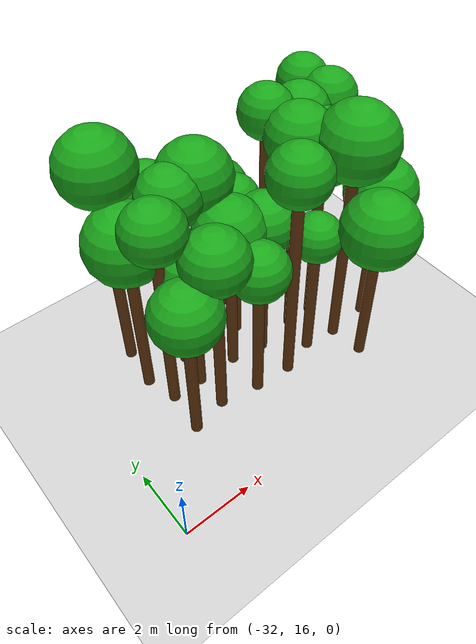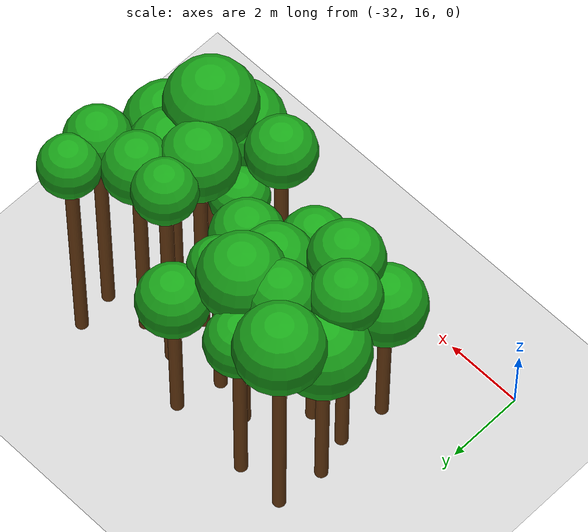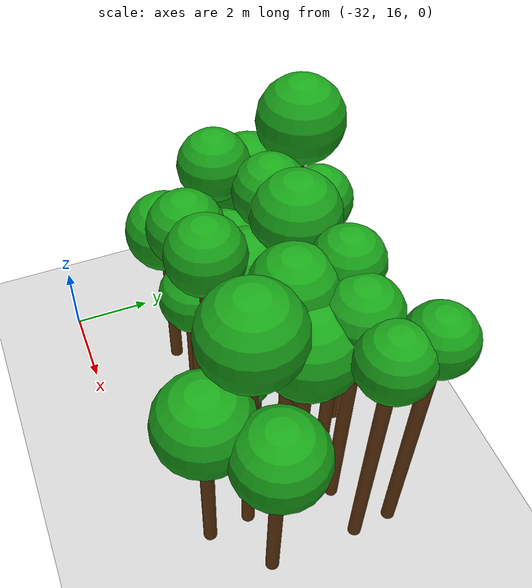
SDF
<sdf version="1.6">
 <world name="forest_world">
  <include><uri>model://sun</uri></include>
  <include><uri>model://ground_plane</uri></include>
  <model name="tree_44_trunk">
   <static>true</static>
   <pose>-29.98 18.32 2.12 0 0 0</pose>
   <link name="link">
    <collision name="collision">
     <geometry><cylinder><radius>0.16</radius><length>4.24</length></cylinder></geometry>
    </collision>
    <visual name="visual">
     <geometry><cylinder><radius>0.16</radius><length>4.24</length></cylinder></geometry>
     <material><ambient>0.35 0.20 0.05 1</ambient><diffuse>0.45 0.25 0.08 1</diffuse></material>
    </visual>
   </link>
  </model>
  <model name="tree_44_leaf">
   <static>true</static>
   <pose>-29.98 18.32 4.82 0 0 0</pose>
   <link name="link">
    <collision name="collision"><geometry><sphere><radius>0.96</radius></sphere></geometry></collision>
    <visual name="visual">
     <geometry><sphere><radius>0.96</radius></sphere></geometry>
     <material><ambient>0.05 0.45 0.05 1</ambient><diffuse>0.10 0.65 0.10 1</diffuse></material>
    </visual>
   </link>
  </model>
  <model name="tree_45_trunk">
   <static>true</static>
   <pose>-29.88 19.54 3.03 0 0 0</pose>
   <link name="link">
    <collision name="collision">
     <geometry><cylinder><radius>0.16</radius><length>6.06</length></cylinder></geometry>
    </collision>
    <visual name="visual">
     <geometry><cylinder><radius>0.16</radius><length>6.06</length></cylinder></geometry>
     <material><ambient>0.35 0.20 0.05 1</ambient><diffuse>0.45 0.25 0.08 1</diffuse></material>
    </visual>
   </link>
  </model>
  <model name="tree_45_leaf">
   <static>true</static>
   <pose>-29.88 19.54 6.57 0 0 0</pose>
   <link name="link">
    <collision name="collision"><geometry><sphere><radius>0.84</radius></sphere></geometry></collision>
    <visual name="visual">
     <geometry><sphere><radius>0.84</radius></sphere></geometry>
     <material><ambient>0.05 0.45 0.05 1</ambient><diffuse>0.10 0.65 0.10 1</diffuse></material>
    </visual>
   </link>
  </model>
  <model name="tree_46_trunk">
   <static>true</static>
   <pose>-30.15 20.47 2.51 0 0 0</pose>
   <link name="link">
    <collision name="collision">
     <geometry><cylinder><radius>0.16</radius><length>5.01</length></cylinder></geometry>
    </collision>
    <visual name="visual">
     <geometry><cylinder><radius>0.16</radius><length>5.01</length></cylinder></geometry>
     <material><ambient>0.35 0.20 0.05 1</ambient><diffuse>0.45 0.25 0.08 1</diffuse></material>
    </visual>
   </link>
  </model>
  <model name="tree_46_leaf">
   <static>true</static>
   <pose>-30.15 20.47 5.67 0 0 0</pose>
   <link name="link">
    <collision name="collision"><geometry><sphere><radius>1.09</radius></sphere></geometry></collision>
    <visual name="visual">
     <geometry><sphere><radius>1.09</radius></sphere></geometry>
     <material><ambient>0.05 0.45 0.05 1</ambient><diffuse>0.10 0.65 0.10 1</diffuse></material>
    </visual>
   </link>
  </model>
  <model name="tree_47_trunk">
   <static>true</static>
   <pose>-30.00 21.68 3.27 0 0 0</pose>
   <link name="link">
    <collision name="collision">
     <geometry><cylinder><radius>0.16</radius><length>6.54</length></cylinder></geometry>
    </collision>
    <visual name="visual">
     <geometry><cylinder><radius>0.16</radius><length>6.54</length></cylinder></geometry>
     <material><ambient>0.35 0.20 0.05 1</ambient><diffuse>0.45 0.25 0.08 1</diffuse></material>
    </visual>
   </link>
  </model>
  <model name="tree_47_leaf">
   <static>true</static>
   <pose>-30.00 21.68 7.16 0 0 0</pose>
   <link name="link">
    <collision name="collision"><geometry><sphere><radius>1.04</radius></sphere></geometry></collision>
    <visual name="visual">
     <geometry><sphere><radius>1.04</radius></sphere></geometry>
     <material><ambient>0.05 0.45 0.05 1</ambient><diffuse>0.10 0.65 0.10 1</diffuse></material>
    </visual>
   </link>
  </model>
  <model name="tree_99_trunk">
   <static>true</static>
   <pose>-28.93 18.53 2.64 0 0 0</pose>
   <link name="link">
    <collision name="collision">
     <geometry><cylinder><radius>0.16</radius><length>5.28</length></cylinder></geometry>
    </collision>
    <visual name="visual">
     <geometry><cylinder><radius>0.16</radius><length>5.28</length></cylinder></geometry>
     <material><ambient>0.35 0.20 0.05 1</ambient><diffuse>0.45 0.25 0.08 1</diffuse></material>
    </visual>
   </link>
  </model>
  <model name="tree_99_leaf">
   <static>true</static>
   <pose>-28.93 18.53 5.82 0 0 0</pose>
   <link name="link">
    <collision name="collision"><geometry><sphere><radius>0.90</radius></sphere></geometry></collision>
    <visual name="visual">
     <geometry><sphere><radius>0.90</radius></sphere></geometry>
     <material><ambient>0.05 0.45 0.05 1</ambient><diffuse>0.10 0.65 0.10 1</diffuse></material>
    </visual>
   </link>
  </model>
  <model name="tree_100_trunk">
   <static>true</static>
   <pose>-28.94 19.54 2.08 0 0 0</pose>
   <link name="link">
    <collision name="collision">
     <geometry><cylinder><radius>0.16</radius><length>4.15</length></cylinder></geometry>
    </collision>
    <visual name="visual">
     <geometry><cylinder><radius>0.16</radius><length>4.15</length></cylinder></geometry>
     <material><ambient>0.35 0.20 0.05 1</ambient><diffuse>0.45 0.25 0.08 1</diffuse></material>
    </visual>
   </link>
  </model>
  <model name="tree_100_leaf">
   <static>true</static>
   <pose>-28.94 19.54 4.75 0 0 0</pose>
   <link name="link">
    <collision name="collision"><geometry><sphere><radius>0.99</radius></sphere></geometry></collision>
    <visual name="visual">
     <geometry><sphere><radius>0.99</radius></sphere></geometry>
     <material><ambient>0.05 0.45 0.05 1</ambient><diffuse>0.10 0.65 0.10 1</diffuse></material>
    </visual>
   </link>
  </model>
  <model name="tree_101_trunk">
   <static>true</static>
   <pose>-28.82 20.48 2.94 0 0 0</pose>
   <link name="link">
    <collision name="collision">
     <geometry><cylinder><radius>0.16</radius><length>5.88</length></cylinder></geometry>
    </collision>
    <visual name="visual">
     <geometry><cylinder><radius>0.16</radius><length>5.88</length></cylinder></geometry>
     <material><ambient>0.35 0.20 0.05 1</ambient><diffuse>0.45 0.25 0.08 1</diffuse></material>
    </visual>
   </link>
  </model>
  <model name="tree_101_leaf">
   <static>true</static>
   <pose>-28.82 20.48 6.40 0 0 0</pose>
   <link name="link">
    <collision name="collision"><geometry><sphere><radius>0.87</radius></sphere></geometry></collision>
    <visual name="visual">
     <geometry><sphere><radius>0.87</radius></sphere></geometry>
     <material><ambient>0.05 0.45 0.05 1</ambient><diffuse>0.10 0.65 0.10 1</diffuse></material>
    </visual>
   </link>
  </model>
  <model name="tree_102_trunk">
   <static>true</static>
   <pose>-28.75 21.66 2.67 0 0 0</pose>
   <link name="link">
    <collision name="collision">
     <geometry><cylinder><radius>0.16</radius><length>5.33</length></cylinder></geometry>
    </collision>
    <visual name="visual">
     <geometry><cylinder><radius>0.16</radius><length>5.33</length></cylinder></geometry>
     <material><ambient>0.35 0.20 0.05 1</ambient><diffuse>0.45 0.25 0.08 1</diffuse></material>
    </visual>
   </link>
  </model>
  <model name="tree_102_leaf">
   <static>true</static>
   <pose>-28.75 21.66 5.82 0 0 0</pose>
   <link name="link">
    <collision name="collision"><geometry><sphere><radius>0.81</radius></sphere></geometry></collision>
    <visual name="visual">
     <geometry><sphere><radius>0.81</radius></sphere></geometry>
     <material><ambient>0.05 0.45 0.05 1</ambient><diffuse>0.10 0.65 0.10 1</diffuse></material>
    </visual>
   </link>
  </model>
  <model name="tree_154_trunk">
   <static>true</static>
   <pose>-27.76 18.32 2.19 0 0 0</pose>
   <link name="link">
    <collision name="collision">
     <geometry><cylinder><radius>0.16</radius><length>4.38</length></cylinder></geometry>
    </collision>
    <visual name="visual">
     <geometry><cylinder><radius>0.16</radius><length>4.38</length></cylinder></geometry>
     <material><ambient>0.35 0.20 0.05 1</ambient><diffuse>0.45 0.25 0.08 1</diffuse></material>
    </visual>
   </link>
  </model>
  <model name="tree_154_leaf">
   <static>true</static>
   <pose>-27.76 18.32 4.88 0 0 0</pose>
   <link name="link">
    <collision name="collision"><geometry><sphere><radius>0.83</radius></sphere></geometry></collision>
    <visual name="visual">
     <geometry><sphere><radius>0.83</radius></sphere></geometry>
     <material><ambient>0.05 0.45 0.05 1</ambient><diffuse>0.10 0.65 0.10 1</diffuse></material>
    </visual>
   </link>
  </model>
  <model name="tree_155_trunk">
   <static>true</static>
   <pose>-27.71 19.55 2.34 0 0 0</pose>
   <link name="link">
    <collision name="collision">
     <geometry><cylinder><radius>0.16</radius><length>4.69</length></cylinder></geometry>
    </collision>
    <visual name="visual">
     <geometry><cylinder><radius>0.16</radius><length>4.69</length></cylinder></geometry>
     <material><ambient>0.35 0.20 0.05 1</ambient><diffuse>0.45 0.25 0.08 1</diffuse></material>
    </visual>
   </link>
  </model>
  <model name="tree_155_leaf">
   <static>true</static>
   <pose>-27.71 19.55 5.29 0 0 0</pose>
   <link name="link">
    <collision name="collision"><geometry><sphere><radius>1.00</radius></sphere></geometry></collision>
    <visual name="visual">
     <geometry><sphere><radius>1.00</radius></sphere></geometry>
     <material><ambient>0.05 0.45 0.05 1</ambient><diffuse>0.10 0.65 0.10 1</diffuse></material>
    </visual>
   </link>
  </model>
  <model name="tree_156_trunk">
   <static>true</static>
   <pose>-27.89 20.71 2.90 0 0 0</pose>
   <link name="link">
    <collision name="collision">
     <geometry><cylinder><radius>0.16</radius><length>5.80</length></cylinder></geometry>
    </collision>
    <visual name="visual">
     <geometry><cylinder><radius>0.16</radius><length>5.80</length></cylinder></geometry>
     <material><ambient>0.35 0.20 0.05 1</ambient><diffuse>0.45 0.25 0.08 1</diffuse></material>
    </visual>
   </link>
  </model>
  <model name="tree_156_leaf">
   <static>true</static>
   <pose>-27.89 20.71 6.42 0 0 0</pose>
   <link name="link">
    <collision name="collision"><geometry><sphere><radius>1.03</radius></sphere></geometry></collision>
    <visual name="visual">
     <geometry><sphere><radius>1.03</radius></sphere></geometry>
     <material><ambient>0.05 0.45 0.05 1</ambient><diffuse>0.10 0.65 0.10 1</diffuse></material>
    </visual>
   </link>
  </model>
  <model name="tree_209_trunk">
   <static>true</static>
   <pose>-26.64 18.25 3.42 0 0 0</pose>
   <link name="link">
    <collision name="collision">
     <geometry><cylinder><radius>0.16</radius><length>6.85</length></cylinder></geometry>
    </collision>
    <visual name="visual">
     <geometry><cylinder><radius>0.16</radius><length>6.85</length></cylinder></geometry>
     <material><ambient>0.35 0.20 0.05 1</ambient><diffuse>0.45 0.25 0.08 1</diffuse></material>
    </visual>
   </link>
  </model>
  <model name="tree_209_leaf">
   <static>true</static>
   <pose>-26.64 18.25 7.35 0 0 0</pose>
   <link name="link">
    <collision name="collision"><geometry><sphere><radius>0.83</radius></sphere></geometry></collision>
    <visual name="visual">
     <geometry><sphere><radius>0.83</radius></sphere></geometry>
     <material><ambient>0.05 0.45 0.05 1</ambient><diffuse>0.10 0.65 0.10 1</diffuse></material>
    </visual>
   </link>
  </model>
  <model name="tree_210_trunk">
   <static>true</static>
   <pose>-26.71 19.39 2.30 0 0 0</pose>
   <link name="link">
    <collision name="collision">
     <geometry><cylinder><radius>0.16</radius><length>4.60</length></cylinder></geometry>
    </collision>
    <visual name="visual">
     <geometry><cylinder><radius>0.16</radius><length>4.60</length></cylinder></geometry>
     <material><ambient>0.35 0.20 0.05 1</ambient><diffuse>0.45 0.25 0.08 1</diffuse></material>
    </visual>
   </link>
  </model>
  <model name="tree_210_leaf">
   <static>true</static>
   <pose>-26.71 19.39 5.13 0 0 0</pose>
   <link name="link">
    <collision name="collision"><geometry><sphere><radius>0.89</radius></sphere></geometry></collision>
    <visual name="visual">
     <geometry><sphere><radius>0.89</radius></sphere></geometry>
     <material><ambient>0.05 0.45 0.05 1</ambient><diffuse>0.10 0.65 0.10 1</diffuse></material>
    </visual>
   </link>
  </model>
  <model name="tree_211_trunk">
   <static>true</static>
   <pose>-26.87 20.45 2.43 0 0 0</pose>
   <link name="link">
    <collision name="collision">
     <geometry><cylinder><radius>0.16</radius><length>4.87</length></cylinder></geometry>
    </collision>
    <visual name="visual">
     <geometry><cylinder><radius>0.16</radius><length>4.87</length></cylinder></geometry>
     <material><ambient>0.35 0.20 0.05 1</ambient><diffuse>0.45 0.25 0.08 1</diffuse></material>
    </visual>
   </link>
  </model>
  <model name="tree_211_leaf">
   <static>true</static>
   <pose>-26.87 20.45 5.30 0 0 0</pose>
   <link name="link">
    <collision name="collision"><geometry><sphere><radius>0.72</radius></sphere></geometry></collision>
    <visual name="visual">
     <geometry><sphere><radius>0.72</radius></sphere></geometry>
     <material><ambient>0.05 0.45 0.05 1</ambient><diffuse>0.10 0.65 0.10 1</diffuse></material>
    </visual>
   </link>
  </model>
  <model name="tree_212_trunk">
   <static>true</static>
   <pose>-26.58 21.57 2.16 0 0 0</pose>
   <link name="link">
    <collision name="collision">
     <geometry><cylinder><radius>0.16</radius><length>4.32</length></cylinder></geometry>
    </collision>
    <visual name="visual">
     <geometry><cylinder><radius>0.16</radius><length>4.32</length></cylinder></geometry>
     <material><ambient>0.35 0.20 0.05 1</ambient><diffuse>0.45 0.25 0.08 1</diffuse></material>
    </visual>
   </link>
  </model>
  <model name="tree_212_leaf">
   <static>true</static>
   <pose>-26.58 21.57 4.84 0 0 0</pose>
   <link name="link">
    <collision name="collision"><geometry><sphere><radius>0.87</radius></sphere></geometry></collision>
    <visual name="visual">
     <geometry><sphere><radius>0.87</radius></sphere></geometry>
     <material><ambient>0.05 0.45 0.05 1</ambient><diffuse>0.10 0.65 0.10 1</diffuse></material>
    </visual>
   </link>
  </model>
  <model name="tree_264_trunk">
   <static>true</static>
   <pose>-25.60 18.54 2.07 0 0 0</pose>
   <link name="link">
    <collision name="collision">
     <geometry><cylinder><radius>0.16</radius><length>4.13</length></cylinder></geometry>
    </collision>
    <visual name="visual">
     <geometry><cylinder><radius>0.16</radius><length>4.13</length></cylinder></geometry>
     <material><ambient>0.35 0.20 0.05 1</ambient><diffuse>0.45 0.25 0.08 1</diffuse></material>
    </visual>
   </link>
  </model>
  <model name="tree_264_leaf">
   <static>true</static>
   <pose>-25.60 18.54 4.57 0 0 0</pose>
   <link name="link">
    <collision name="collision"><geometry><sphere><radius>0.72</radius></sphere></geometry></collision>
    <visual name="visual">
     <geometry><sphere><radius>0.72</radius></sphere></geometry>
     <material><ambient>0.05 0.45 0.05 1</ambient><diffuse>0.10 0.65 0.10 1</diffuse></material>
    </visual>
   </link>
  </model>
  <model name="tree_265_trunk">
   <static>true</static>
   <pose>-25.43 19.59 3.27 0 0 0</pose>
   <link name="link">
    <collision name="collision">
     <geometry><cylinder><radius>0.16</radius><length>6.55</length></cylinder></geometry>
    </collision>
    <visual name="visual">
     <geometry><cylinder><radius>0.16</radius><length>6.55</length></cylinder></geometry>
     <material><ambient>0.35 0.20 0.05 1</ambient><diffuse>0.45 0.25 0.08 1</diffuse></material>
    </visual>
   </link>
  </model>
  <model name="tree_265_leaf">
   <static>true</static>
   <pose>-25.43 19.59 7.11 0 0 0</pose>
   <link name="link">
    <collision name="collision"><geometry><sphere><radius>0.93</radius></sphere></geometry></collision>
    <visual name="visual">
     <geometry><sphere><radius>0.93</radius></sphere></geometry>
     <material><ambient>0.05 0.45 0.05 1</ambient><diffuse>0.10 0.65 0.10 1</diffuse></material>
    </visual>
   </link>
  </model>
  <model name="tree_266_trunk">
   <static>true</static>
   <pose>-25.55 20.74 3.42 0 0 0</pose>
   <link name="link">
    <collision name="collision">
     <geometry><cylinder><radius>0.16</radius><length>6.85</length></cylinder></geometry>
    </collision>
    <visual name="visual">
     <geometry><cylinder><radius>0.16</radius><length>6.85</length></cylinder></geometry>
     <material><ambient>0.35 0.20 0.05 1</ambient><diffuse>0.45 0.25 0.08 1</diffuse></material>
    </visual>
   </link>
  </model>
  <model name="tree_266_leaf">
   <static>true</static>
   <pose>-25.55 20.74 7.31 0 0 0</pose>
   <link name="link">
    <collision name="collision"><geometry><sphere><radius>0.76</radius></sphere></geometry></collision>
    <visual name="visual">
     <geometry><sphere><radius>0.76</radius></sphere></geometry>
     <material><ambient>0.05 0.45 0.05 1</ambient><diffuse>0.10 0.65 0.10 1</diffuse></material>
    </visual>
   </link>
  </model>
  <model name="tree_318_trunk">
   <static>true</static>
   <pose>-24.48 17.39 2.18 0 0 0</pose>
   <link name="link">
    <collision name="collision">
     <geometry><cylinder><radius>0.16</radius><length>4.35</length></cylinder></geometry>
    </collision>
    <visual name="visual">
     <geometry><cylinder><radius>0.16</radius><length>4.35</length></cylinder></geometry>
     <material><ambient>0.35 0.20 0.05 1</ambient><diffuse>0.45 0.25 0.08 1</diffuse></material>
    </visual>
   </link>
  </model>
  <model name="tree_318_leaf">
   <static>true</static>
   <pose>-24.48 17.39 5.01 0 0 0</pose>
   <link name="link">
    <collision name="collision"><geometry><sphere><radius>1.10</radius></sphere></geometry></collision>
    <visual name="visual">
     <geometry><sphere><radius>1.10</radius></sphere></geometry>
     <material><ambient>0.05 0.45 0.05 1</ambient><diffuse>0.10 0.65 0.10 1</diffuse></material>
    </visual>
   </link>
  </model>
  <model name="tree_319_trunk">
   <static>true</static>
   <pose>-24.61 18.41 3.30 0 0 0</pose>
   <link name="link">
    <collision name="collision">
     <geometry><cylinder><radius>0.16</radius><length>6.59</length></cylinder></geometry>
    </collision>
    <visual name="visual">
     <geometry><cylinder><radius>0.16</radius><length>6.59</length></cylinder></geometry>
     <material><ambient>0.35 0.20 0.05 1</ambient><diffuse>0.45 0.25 0.08 1</diffuse></material>
    </visual>
   </link>
  </model>
  <model name="tree_319_leaf">
   <static>true</static>
   <pose>-24.61 18.41 7.24 0 0 0</pose>
   <link name="link">
    <collision name="collision"><geometry><sphere><radius>1.09</radius></sphere></geometry></collision>
    <visual name="visual">
     <geometry><sphere><radius>1.09</radius></sphere></geometry>
     <material><ambient>0.05 0.45 0.05 1</ambient><diffuse>0.10 0.65 0.10 1</diffuse></material>
    </visual>
   </link>
  </model>
  <model name="tree_320_trunk">
   <static>true</static>
   <pose>-24.57 19.58 2.87 0 0 0</pose>
   <link name="link">
    <collision name="collision">
     <geometry><cylinder><radius>0.16</radius><length>5.75</length></cylinder></geometry>
    </collision>
    <visual name="visual">
     <geometry><cylinder><radius>0.16</radius><length>5.75</length></cylinder></geometry>
     <material><ambient>0.35 0.20 0.05 1</ambient><diffuse>0.45 0.25 0.08 1</diffuse></material>
    </visual>
   </link>
  </model>
  <model name="tree_320_leaf">
   <static>true</static>
   <pose>-24.57 19.58 6.40 0 0 0</pose>
   <link name="link">
    <collision name="collision"><geometry><sphere><radius>1.08</radius></sphere></geometry></collision>
    <visual name="visual">
     <geometry><sphere><radius>1.08</radius></sphere></geometry>
     <material><ambient>0.05 0.45 0.05 1</ambient><diffuse>0.10 0.65 0.10 1</diffuse></material>
    </visual>
   </link>
  </model>
  <model name="tree_321_trunk">
   <static>true</static>
   <pose>-24.53 20.59 3.22 0 0 0</pose>
   <link name="link">
    <collision name="collision">
     <geometry><cylinder><radius>0.16</radius><length>6.43</length></cylinder></geometry>
    </collision>
    <visual name="visual">
     <geometry><cylinder><radius>0.16</radius><length>6.43</length></cylinder></geometry>
     <material><ambient>0.35 0.20 0.05 1</ambient><diffuse>0.45 0.25 0.08 1</diffuse></material>
    </visual>
   </link>
  </model>
  <model name="tree_321_leaf">
   <static>true</static>
   <pose>-24.53 20.59 6.94 0 0 0</pose>
   <link name="link">
    <collision name="collision"><geometry><sphere><radius>0.84</radius></sphere></geometry></collision>
    <visual name="visual">
     <geometry><sphere><radius>0.84</radius></sphere></geometry>
     <material><ambient>0.05 0.45 0.05 1</ambient><diffuse>0.10 0.65 0.10 1</diffuse></material>
    </visual>
   </link>
  </model>
  <model name="tree_374_trunk">
   <static>true</static>
   <pose>-23.28 18.51 2.16 0 0 0</pose>
   <link name="link">
    <collision name="collision">
     <geometry><cylinder><radius>0.16</radius><length>4.33</length></cylinder></geometry>
    </collision>
    <visual name="visual">
     <geometry><cylinder><radius>0.16</radius><length>4.33</length></cylinder></geometry>
     <material><ambient>0.35 0.20 0.05 1</ambient><diffuse>0.45 0.25 0.08 1</diffuse></material>
    </visual>
   </link>
  </model>
  <model name="tree_374_leaf">
   <static>true</static>
   <pose>-23.28 18.51 4.95 0 0 0</pose>
   <link name="link">
    <collision name="collision"><geometry><sphere><radius>1.05</radius></sphere></geometry></collision>
    <visual name="visual">
     <geometry><sphere><radius>1.05</radius></sphere></geometry>
     <material><ambient>0.05 0.45 0.05 1</ambient><diffuse>0.10 0.65 0.10 1</diffuse></material>
    </visual>
   </link>
  </model>
  <model name="tree_376_trunk">
   <static>true</static>
   <pose>-23.38 20.69 3.21 0 0 0</pose>
   <link name="link">
    <collision name="collision">
     <geometry><cylinder><radius>0.16</radius><length>6.43</length></cylinder></geometry>
    </collision>
    <visual name="visual">
     <geometry><cylinder><radius>0.16</radius><length>6.43</length></cylinder></geometry>
     <material><ambient>0.35 0.20 0.05 1</ambient><diffuse>0.45 0.25 0.08 1</diffuse></material>
    </visual>
   </link>
  </model>
  <model name="tree_376_leaf">
   <static>true</static>
   <pose>-23.38 20.69 6.91 0 0 0</pose>
   <link name="link">
    <collision name="collision"><geometry><sphere><radius>0.80</radius></sphere></geometry></collision>
    <visual name="visual">
     <geometry><sphere><radius>0.80</radius></sphere></geometry>
     <material><ambient>0.05 0.45 0.05 1</ambient><diffuse>0.10 0.65 0.10 1</diffuse></material>
    </visual>
   </link>
  </model>
  <model name="tree_377_trunk">
   <static>true</static>
   <pose>-23.48 21.64 3.28 0 0 0</pose>
   <link name="link">
    <collision name="collision">
     <geometry><cylinder><radius>0.16</radius><length>6.57</length></cylinder></geometry>
    </collision>
    <visual name="visual">
     <geometry><cylinder><radius>0.16</radius><length>6.57</length></cylinder></geometry>
     <material><ambient>0.35 0.20 0.05 1</ambient><diffuse>0.45 0.25 0.08 1</diffuse></material>
    </visual>
   </link>
  </model>
  <model name="tree_377_leaf">
   <static>true</static>
   <pose>-23.48 21.64 7.01 0 0 0</pose>
   <link name="link">
    <collision name="collision"><geometry><sphere><radius>0.74</radius></sphere></geometry></collision>
    <visual name="visual">
     <geometry><sphere><radius>0.74</radius></sphere></geometry>
     <material><ambient>0.05 0.45 0.05 1</ambient><diffuse>0.10 0.65 0.10 1</diffuse></material>
    </visual>
   </link>
  </model>
 </world>
</sdf>
